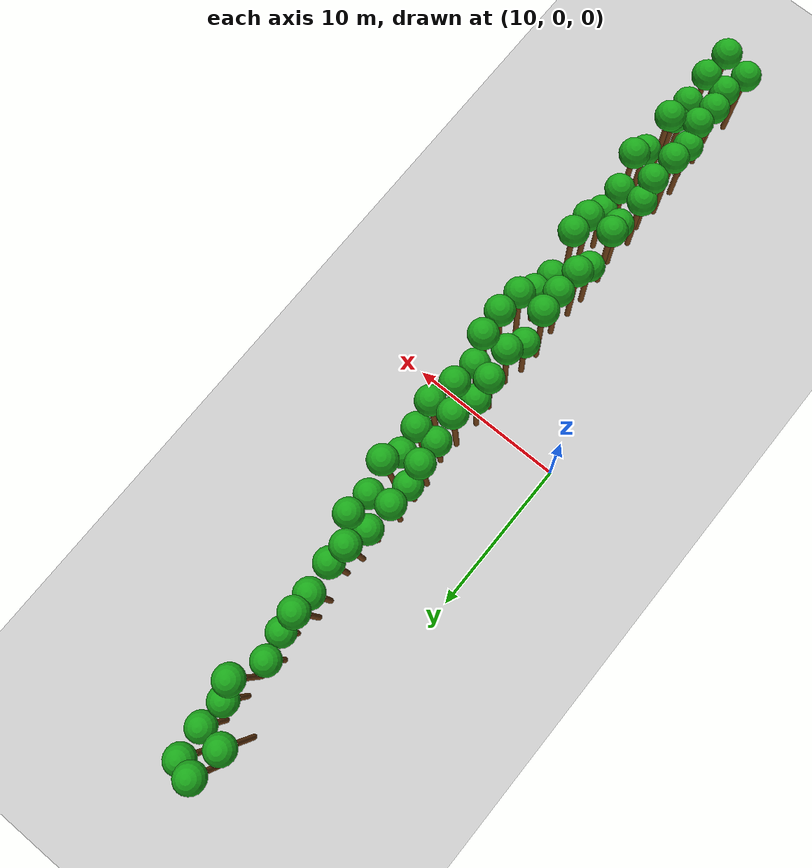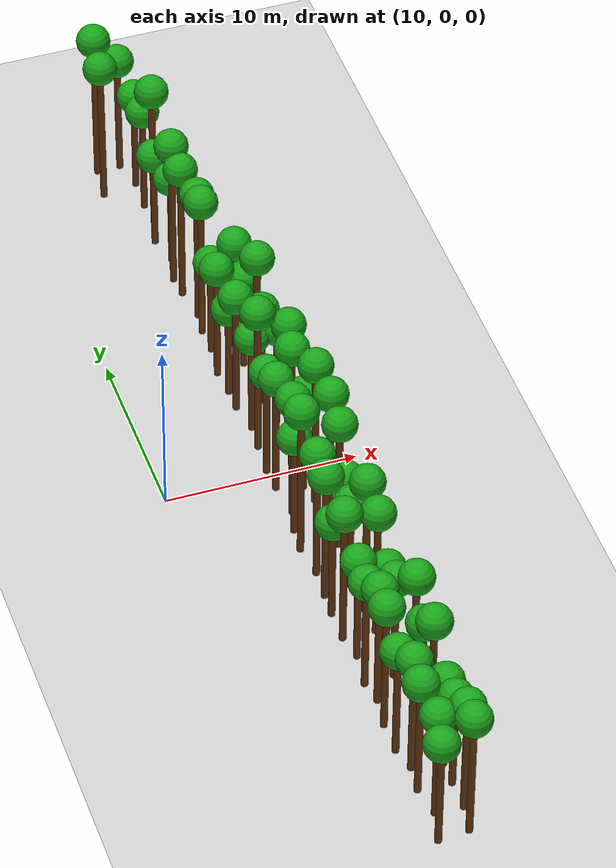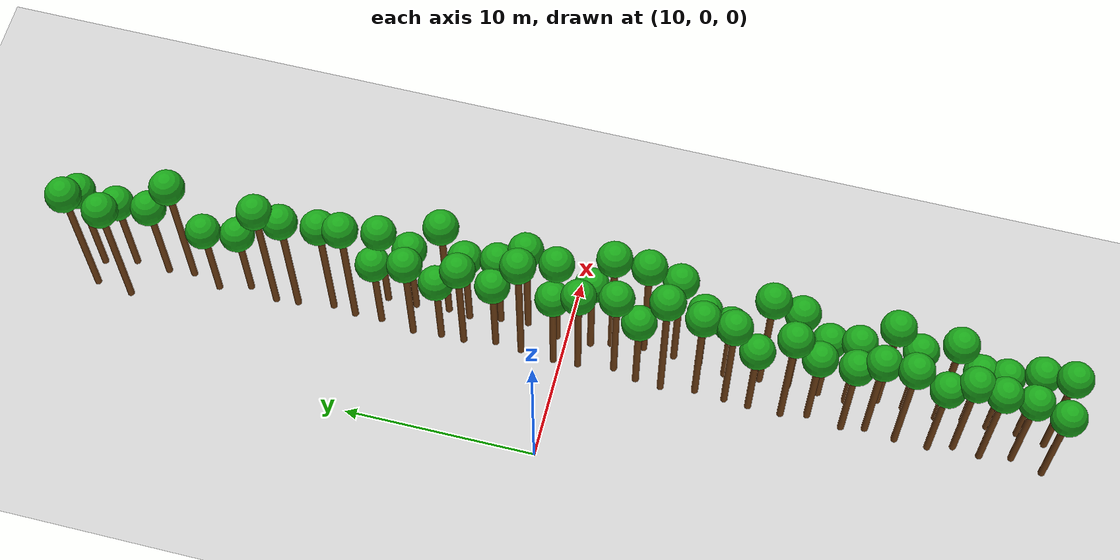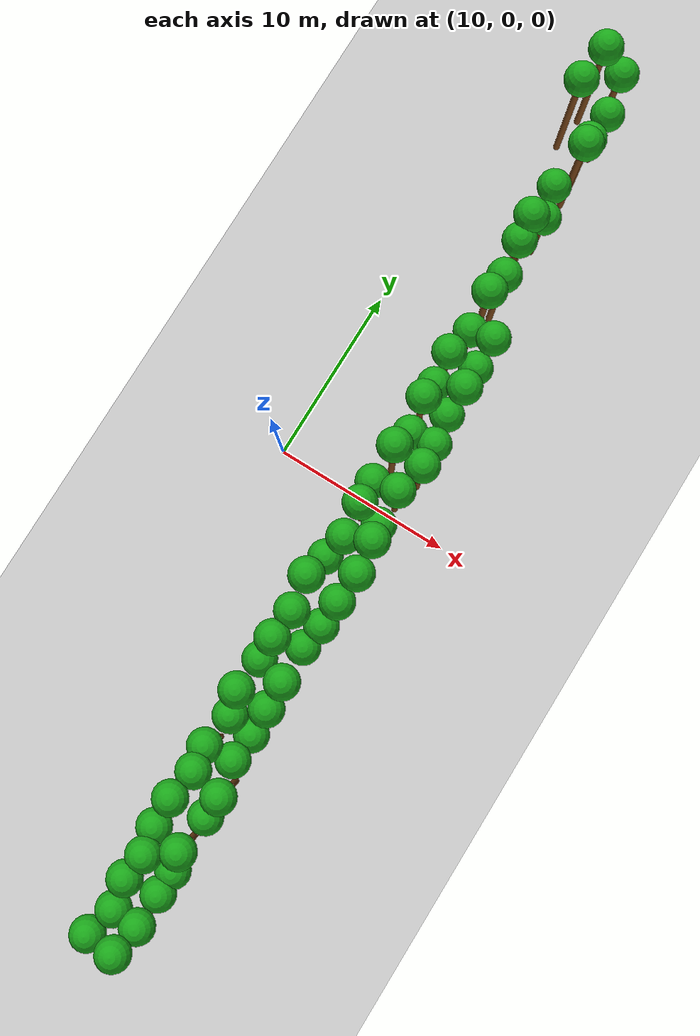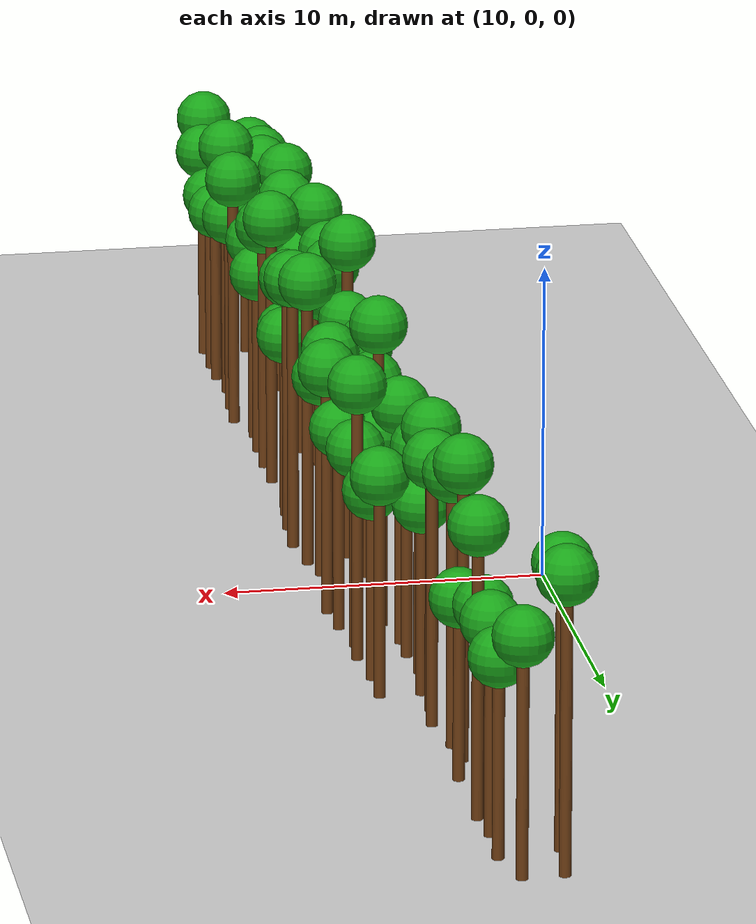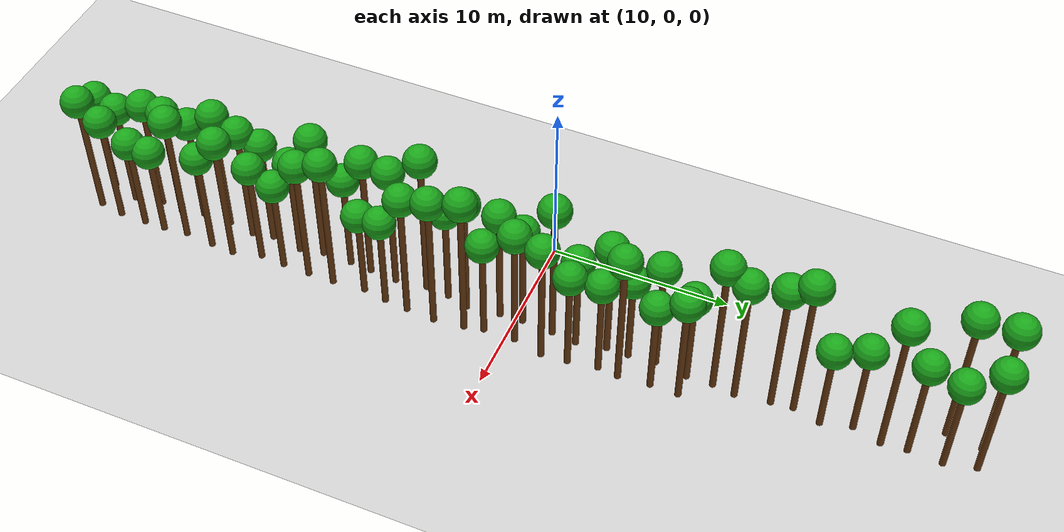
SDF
<sdf version="1.6">
 <world name="forest_world">
  <include><uri>model://sun</uri></include>
  <include><uri>model://ground_plane</uri></include>
  <model name="tree_903">
   <static>true</static>
   <link name="trunk">
    <collision name="collision">
     <pose>13.78 22.80 4.15 0 0 0</pose>
     <geometry><cylinder><radius>0.18</radius><length>8.29</length></cylinder></geometry>
    </collision>
    <visual name="trunk_visual">
     <pose>13.78 22.80 4.15 0 0 0</pose>
     <geometry><cylinder><radius>0.18</radius><length>8.29</length></cylinder></geometry>
     <material><ambient>0.35 0.20 0.05 1</ambient><diffuse>0.45 0.25 0.08 1</diffuse></material>
    </visual>
    <visual name="leaf_visual">
     <pose>13.78 22.80 8.74 0 0 0</pose>
     <geometry><sphere><radius>0.9</radius></sphere></geometry>
     <material><ambient>0.05 0.45 0.05 1</ambient><diffuse>0.10 0.65 0.10 1</diffuse></material>
    </visual>
   </link>
  </model>
  <model name="tree_904">
   <static>true</static>
   <link name="trunk">
    <collision name="collision">
     <pose>14.01 24.70 4.30 0 0 0</pose>
     <geometry><cylinder><radius>0.18</radius><length>8.61</length></cylinder></geometry>
    </collision>
    <visual name="trunk_visual">
     <pose>14.01 24.70 4.30 0 0 0</pose>
     <geometry><cylinder><radius>0.18</radius><length>8.61</length></cylinder></geometry>
     <material><ambient>0.35 0.20 0.05 1</ambient><diffuse>0.45 0.25 0.08 1</diffuse></material>
    </visual>
    <visual name="leaf_visual">
     <pose>14.01 24.70 9.06 0 0 0</pose>
     <geometry><sphere><radius>0.9</radius></sphere></geometry>
     <material><ambient>0.05 0.45 0.05 1</ambient><diffuse>0.10 0.65 0.10 1</diffuse></material>
    </visual>
   </link>
  </model>
  <model name="tree_905">
   <static>true</static>
   <link name="trunk">
    <collision name="collision">
     <pose>15.28 -24.96 3.13 0 0 0</pose>
     <geometry><cylinder><radius>0.18</radius><length>6.26</length></cylinder></geometry>
    </collision>
    <visual name="trunk_visual">
     <pose>15.28 -24.96 3.13 0 0 0</pose>
     <geometry><cylinder><radius>0.18</radius><length>6.26</length></cylinder></geometry>
     <material><ambient>0.35 0.20 0.05 1</ambient><diffuse>0.45 0.25 0.08 1</diffuse></material>
    </visual>
    <visual name="leaf_visual">
     <pose>15.28 -24.96 6.71 0 0 0</pose>
     <geometry><sphere><radius>0.9</radius></sphere></geometry>
     <material><ambient>0.05 0.45 0.05 1</ambient><diffuse>0.10 0.65 0.10 1</diffuse></material>
    </visual>
   </link>
  </model>
  <model name="tree_906">
   <static>true</static>
   <link name="trunk">
    <collision name="collision">
     <pose>15.70 -23.35 3.16 0 0 0</pose>
     <geometry><cylinder><radius>0.18</radius><length>6.32</length></cylinder></geometry>
    </collision>
    <visual name="trunk_visual">
     <pose>15.70 -23.35 3.16 0 0 0</pose>
     <geometry><cylinder><radius>0.18</radius><length>6.32</length></cylinder></geometry>
     <material><ambient>0.35 0.20 0.05 1</ambient><diffuse>0.45 0.25 0.08 1</diffuse></material>
    </visual>
    <visual name="leaf_visual">
     <pose>15.70 -23.35 6.77 0 0 0</pose>
     <geometry><sphere><radius>0.9</radius></sphere></geometry>
     <material><ambient>0.05 0.45 0.05 1</ambient><diffuse>0.10 0.65 0.10 1</diffuse></material>
    </visual>
   </link>
  </model>
  <model name="tree_907">
   <static>true</static>
   <link name="trunk">
    <collision name="collision">
     <pose>15.42 -21.76 3.46 0 0 0</pose>
     <geometry><cylinder><radius>0.18</radius><length>6.93</length></cylinder></geometry>
    </collision>
    <visual name="trunk_visual">
     <pose>15.42 -21.76 3.46 0 0 0</pose>
     <geometry><cylinder><radius>0.18</radius><length>6.93</length></cylinder></geometry>
     <material><ambient>0.35 0.20 0.05 1</ambient><diffuse>0.45 0.25 0.08 1</diffuse></material>
    </visual>
    <visual name="leaf_visual">
     <pose>15.42 -21.76 7.38 0 0 0</pose>
     <geometry><sphere><radius>0.9</radius></sphere></geometry>
     <material><ambient>0.05 0.45 0.05 1</ambient><diffuse>0.10 0.65 0.10 1</diffuse></material>
    </visual>
   </link>
  </model>
  <model name="tree_908">
   <static>true</static>
   <link name="trunk">
    <collision name="collision">
     <pose>15.59 -20.39 3.52 0 0 0</pose>
     <geometry><cylinder><radius>0.18</radius><length>7.03</length></cylinder></geometry>
    </collision>
    <visual name="trunk_visual">
     <pose>15.59 -20.39 3.52 0 0 0</pose>
     <geometry><cylinder><radius>0.18</radius><length>7.03</length></cylinder></geometry>
     <material><ambient>0.35 0.20 0.05 1</ambient><diffuse>0.45 0.25 0.08 1</diffuse></material>
    </visual>
    <visual name="leaf_visual">
     <pose>15.59 -20.39 7.48 0 0 0</pose>
     <geometry><sphere><radius>0.9</radius></sphere></geometry>
     <material><ambient>0.05 0.45 0.05 1</ambient><diffuse>0.10 0.65 0.10 1</diffuse></material>
    </visual>
   </link>
  </model>
  <model name="tree_909">
   <static>true</static>
   <link name="trunk">
    <collision name="collision">
     <pose>15.27 -19.13 3.22 0 0 0</pose>
     <geometry><cylinder><radius>0.18</radius><length>6.43</length></cylinder></geometry>
    </collision>
    <visual name="trunk_visual">
     <pose>15.27 -19.13 3.22 0 0 0</pose>
     <geometry><cylinder><radius>0.18</radius><length>6.43</length></cylinder></geometry>
     <material><ambient>0.35 0.20 0.05 1</ambient><diffuse>0.45 0.25 0.08 1</diffuse></material>
    </visual>
    <visual name="leaf_visual">
     <pose>15.27 -19.13 6.88 0 0 0</pose>
     <geometry><sphere><radius>0.9</radius></sphere></geometry>
     <material><ambient>0.05 0.45 0.05 1</ambient><diffuse>0.10 0.65 0.10 1</diffuse></material>
    </visual>
   </link>
  </model>
  <model name="tree_910">
   <static>true</static>
   <link name="trunk">
    <collision name="collision">
     <pose>15.29 -17.44 3.82 0 0 0</pose>
     <geometry><cylinder><radius>0.18</radius><length>7.64</length></cylinder></geometry>
    </collision>
    <visual name="trunk_visual">
     <pose>15.29 -17.44 3.82 0 0 0</pose>
     <geometry><cylinder><radius>0.18</radius><length>7.64</length></cylinder></geometry>
     <material><ambient>0.35 0.20 0.05 1</ambient><diffuse>0.45 0.25 0.08 1</diffuse></material>
    </visual>
    <visual name="leaf_visual">
     <pose>15.29 -17.44 8.09 0 0 0</pose>
     <geometry><sphere><radius>0.9</radius></sphere></geometry>
     <material><ambient>0.05 0.45 0.05 1</ambient><diffuse>0.10 0.65 0.10 1</diffuse></material>
    </visual>
   </link>
  </model>
  <model name="tree_911">
   <static>true</static>
   <link name="trunk">
    <collision name="collision">
     <pose>15.51 -15.88 3.61 0 0 0</pose>
     <geometry><cylinder><radius>0.18</radius><length>7.22</length></cylinder></geometry>
    </collision>
    <visual name="trunk_visual">
     <pose>15.51 -15.88 3.61 0 0 0</pose>
     <geometry><cylinder><radius>0.18</radius><length>7.22</length></cylinder></geometry>
     <material><ambient>0.35 0.20 0.05 1</ambient><diffuse>0.45 0.25 0.08 1</diffuse></material>
    </visual>
    <visual name="leaf_visual">
     <pose>15.51 -15.88 7.67 0 0 0</pose>
     <geometry><sphere><radius>0.9</radius></sphere></geometry>
     <material><ambient>0.05 0.45 0.05 1</ambient><diffuse>0.10 0.65 0.10 1</diffuse></material>
    </visual>
   </link>
  </model>
  <model name="tree_912">
   <static>true</static>
   <link name="trunk">
    <collision name="collision">
     <pose>15.29 -14.69 3.29 0 0 0</pose>
     <geometry><cylinder><radius>0.18</radius><length>6.57</length></cylinder></geometry>
    </collision>
    <visual name="trunk_visual">
     <pose>15.29 -14.69 3.29 0 0 0</pose>
     <geometry><cylinder><radius>0.18</radius><length>6.57</length></cylinder></geometry>
     <material><ambient>0.35 0.20 0.05 1</ambient><diffuse>0.45 0.25 0.08 1</diffuse></material>
    </visual>
    <visual name="leaf_visual">
     <pose>15.29 -14.69 7.02 0 0 0</pose>
     <geometry><sphere><radius>0.9</radius></sphere></geometry>
     <material><ambient>0.05 0.45 0.05 1</ambient><diffuse>0.10 0.65 0.10 1</diffuse></material>
    </visual>
   </link>
  </model>
  <model name="tree_913">
   <static>true</static>
   <link name="trunk">
    <collision name="collision">
     <pose>15.53 -12.89 3.06 0 0 0</pose>
     <geometry><cylinder><radius>0.18</radius><length>6.12</length></cylinder></geometry>
    </collision>
    <visual name="trunk_visual">
     <pose>15.53 -12.89 3.06 0 0 0</pose>
     <geometry><cylinder><radius>0.18</radius><length>6.12</length></cylinder></geometry>
     <material><ambient>0.35 0.20 0.05 1</ambient><diffuse>0.45 0.25 0.08 1</diffuse></material>
    </visual>
    <visual name="leaf_visual">
     <pose>15.53 -12.89 6.57 0 0 0</pose>
     <geometry><sphere><radius>0.9</radius></sphere></geometry>
     <material><ambient>0.05 0.45 0.05 1</ambient><diffuse>0.10 0.65 0.10 1</diffuse></material>
    </visual>
   </link>
  </model>
  <model name="tree_914">
   <static>true</static>
   <link name="trunk">
    <collision name="collision">
     <pose>15.27 -11.56 4.05 0 0 0</pose>
     <geometry><cylinder><radius>0.18</radius><length>8.09</length></cylinder></geometry>
    </collision>
    <visual name="trunk_visual">
     <pose>15.27 -11.56 4.05 0 0 0</pose>
     <geometry><cylinder><radius>0.18</radius><length>8.09</length></cylinder></geometry>
     <material><ambient>0.35 0.20 0.05 1</ambient><diffuse>0.45 0.25 0.08 1</diffuse></material>
    </visual>
    <visual name="leaf_visual">
     <pose>15.27 -11.56 8.54 0 0 0</pose>
     <geometry><sphere><radius>0.9</radius></sphere></geometry>
     <material><ambient>0.05 0.45 0.05 1</ambient><diffuse>0.10 0.65 0.10 1</diffuse></material>
    </visual>
   </link>
  </model>
  <model name="tree_915">
   <static>true</static>
   <link name="trunk">
    <collision name="collision">
     <pose>15.29 -9.87 2.95 0 0 0</pose>
     <geometry><cylinder><radius>0.18</radius><length>5.89</length></cylinder></geometry>
    </collision>
    <visual name="trunk_visual">
     <pose>15.29 -9.87 2.95 0 0 0</pose>
     <geometry><cylinder><radius>0.18</radius><length>5.89</length></cylinder></geometry>
     <material><ambient>0.35 0.20 0.05 1</ambient><diffuse>0.45 0.25 0.08 1</diffuse></material>
    </visual>
    <visual name="leaf_visual">
     <pose>15.29 -9.87 6.34 0 0 0</pose>
     <geometry><sphere><radius>0.9</radius></sphere></geometry>
     <material><ambient>0.05 0.45 0.05 1</ambient><diffuse>0.10 0.65 0.10 1</diffuse></material>
    </visual>
   </link>
  </model>
  <model name="tree_916">
   <static>true</static>
   <link name="trunk">
    <collision name="collision">
     <pose>15.37 -8.61 3.87 0 0 0</pose>
     <geometry><cylinder><radius>0.18</radius><length>7.75</length></cylinder></geometry>
    </collision>
    <visual name="trunk_visual">
     <pose>15.37 -8.61 3.87 0 0 0</pose>
     <geometry><cylinder><radius>0.18</radius><length>7.75</length></cylinder></geometry>
     <material><ambient>0.35 0.20 0.05 1</ambient><diffuse>0.45 0.25 0.08 1</diffuse></material>
    </visual>
    <visual name="leaf_visual">
     <pose>15.37 -8.61 8.20 0 0 0</pose>
     <geometry><sphere><radius>0.9</radius></sphere></geometry>
     <material><ambient>0.05 0.45 0.05 1</ambient><diffuse>0.10 0.65 0.10 1</diffuse></material>
    </visual>
   </link>
  </model>
  <model name="tree_917">
   <static>true</static>
   <link name="trunk">
    <collision name="collision">
     <pose>15.48 -7.05 3.85 0 0 0</pose>
     <geometry><cylinder><radius>0.18</radius><length>7.70</length></cylinder></geometry>
    </collision>
    <visual name="trunk_visual">
     <pose>15.48 -7.05 3.85 0 0 0</pose>
     <geometry><cylinder><radius>0.18</radius><length>7.70</length></cylinder></geometry>
     <material><ambient>0.35 0.20 0.05 1</ambient><diffuse>0.45 0.25 0.08 1</diffuse></material>
    </visual>
    <visual name="leaf_visual">
     <pose>15.48 -7.05 8.15 0 0 0</pose>
     <geometry><sphere><radius>0.9</radius></sphere></geometry>
     <material><ambient>0.05 0.45 0.05 1</ambient><diffuse>0.10 0.65 0.10 1</diffuse></material>
    </visual>
   </link>
  </model>
  <model name="tree_918">
   <static>true</static>
   <link name="trunk">
    <collision name="collision">
     <pose>15.26 -5.29 4.49 0 0 0</pose>
     <geometry><cylinder><radius>0.18</radius><length>8.99</length></cylinder></geometry>
    </collision>
    <visual name="trunk_visual">
     <pose>15.26 -5.29 4.49 0 0 0</pose>
     <geometry><cylinder><radius>0.18</radius><length>8.99</length></cylinder></geometry>
     <material><ambient>0.35 0.20 0.05 1</ambient><diffuse>0.45 0.25 0.08 1</diffuse></material>
    </visual>
    <visual name="leaf_visual">
     <pose>15.26 -5.29 9.44 0 0 0</pose>
     <geometry><sphere><radius>0.9</radius></sphere></geometry>
     <material><ambient>0.05 0.45 0.05 1</ambient><diffuse>0.10 0.65 0.10 1</diffuse></material>
    </visual>
   </link>
  </model>
  <model name="tree_919">
   <static>true</static>
   <link name="trunk">
    <collision name="collision">
     <pose>15.37 -3.96 2.98 0 0 0</pose>
     <geometry><cylinder><radius>0.18</radius><length>5.97</length></cylinder></geometry>
    </collision>
    <visual name="trunk_visual">
     <pose>15.37 -3.96 2.98 0 0 0</pose>
     <geometry><cylinder><radius>0.18</radius><length>5.97</length></cylinder></geometry>
     <material><ambient>0.35 0.20 0.05 1</ambient><diffuse>0.45 0.25 0.08 1</diffuse></material>
    </visual>
    <visual name="leaf_visual">
     <pose>15.37 -3.96 6.42 0 0 0</pose>
     <geometry><sphere><radius>0.9</radius></sphere></geometry>
     <material><ambient>0.05 0.45 0.05 1</ambient><diffuse>0.10 0.65 0.10 1</diffuse></material>
    </visual>
   </link>
  </model>
  <model name="tree_920">
   <static>true</static>
   <link name="trunk">
    <collision name="collision">
     <pose>15.70 -2.73 3.66 0 0 0</pose>
     <geometry><cylinder><radius>0.18</radius><length>7.33</length></cylinder></geometry>
    </collision>
    <visual name="trunk_visual">
     <pose>15.70 -2.73 3.66 0 0 0</pose>
     <geometry><cylinder><radius>0.18</radius><length>7.33</length></cylinder></geometry>
     <material><ambient>0.35 0.20 0.05 1</ambient><diffuse>0.45 0.25 0.08 1</diffuse></material>
    </visual>
    <visual name="leaf_visual">
     <pose>15.70 -2.73 7.78 0 0 0</pose>
     <geometry><sphere><radius>0.9</radius></sphere></geometry>
     <material><ambient>0.05 0.45 0.05 1</ambient><diffuse>0.10 0.65 0.10 1</diffuse></material>
    </visual>
   </link>
  </model>
  <model name="tree_921">
   <static>true</static>
   <link name="trunk">
    <collision name="collision">
     <pose>15.47 -0.88 3.53 0 0 0</pose>
     <geometry><cylinder><radius>0.18</radius><length>7.07</length></cylinder></geometry>
    </collision>
    <visual name="trunk_visual">
     <pose>15.47 -0.88 3.53 0 0 0</pose>
     <geometry><cylinder><radius>0.18</radius><length>7.07</length></cylinder></geometry>
     <material><ambient>0.35 0.20 0.05 1</ambient><diffuse>0.45 0.25 0.08 1</diffuse></material>
    </visual>
    <visual name="leaf_visual">
     <pose>15.47 -0.88 7.52 0 0 0</pose>
     <geometry><sphere><radius>0.9</radius></sphere></geometry>
     <material><ambient>0.05 0.45 0.05 1</ambient><diffuse>0.10 0.65 0.10 1</diffuse></material>
    </visual>
   </link>
  </model>
  <model name="tree_922">
   <static>true</static>
   <link name="trunk">
    <collision name="collision">
     <pose>15.41 0.40 3.20 0 0 0</pose>
     <geometry><cylinder><radius>0.18</radius><length>6.40</length></cylinder></geometry>
    </collision>
    <visual name="trunk_visual">
     <pose>15.41 0.40 3.20 0 0 0</pose>
     <geometry><cylinder><radius>0.18</radius><length>6.40</length></cylinder></geometry>
     <material><ambient>0.35 0.20 0.05 1</ambient><diffuse>0.45 0.25 0.08 1</diffuse></material>
    </visual>
    <visual name="leaf_visual">
     <pose>15.41 0.40 6.85 0 0 0</pose>
     <geometry><sphere><radius>0.9</radius></sphere></geometry>
     <material><ambient>0.05 0.45 0.05 1</ambient><diffuse>0.10 0.65 0.10 1</diffuse></material>
    </visual>
   </link>
  </model>
  <model name="tree_923">
   <static>true</static>
   <link name="trunk">
    <collision name="collision">
     <pose>15.54 2.15 4.37 0 0 0</pose>
     <geometry><cylinder><radius>0.18</radius><length>8.74</length></cylinder></geometry>
    </collision>
    <visual name="trunk_visual">
     <pose>15.54 2.15 4.37 0 0 0</pose>
     <geometry><cylinder><radius>0.18</radius><length>8.74</length></cylinder></geometry>
     <material><ambient>0.35 0.20 0.05 1</ambient><diffuse>0.45 0.25 0.08 1</diffuse></material>
    </visual>
    <visual name="leaf_visual">
     <pose>15.54 2.15 9.19 0 0 0</pose>
     <geometry><sphere><radius>0.9</radius></sphere></geometry>
     <material><ambient>0.05 0.45 0.05 1</ambient><diffuse>0.10 0.65 0.10 1</diffuse></material>
    </visual>
   </link>
  </model>
  <model name="tree_924">
   <static>true</static>
   <link name="trunk">
    <collision name="collision">
     <pose>15.67 3.54 2.90 0 0 0</pose>
     <geometry><cylinder><radius>0.18</radius><length>5.80</length></cylinder></geometry>
    </collision>
    <visual name="trunk_visual">
     <pose>15.67 3.54 2.90 0 0 0</pose>
     <geometry><cylinder><radius>0.18</radius><length>5.80</length></cylinder></geometry>
     <material><ambient>0.35 0.20 0.05 1</ambient><diffuse>0.45 0.25 0.08 1</diffuse></material>
    </visual>
    <visual name="leaf_visual">
     <pose>15.67 3.54 6.25 0 0 0</pose>
     <geometry><sphere><radius>0.9</radius></sphere></geometry>
     <material><ambient>0.05 0.45 0.05 1</ambient><diffuse>0.10 0.65 0.10 1</diffuse></material>
    </visual>
   </link>
  </model>
  <model name="tree_925">
   <static>true</static>
   <link name="trunk">
    <collision name="collision">
     <pose>15.39 5.18 3.59 0 0 0</pose>
     <geometry><cylinder><radius>0.18</radius><length>7.17</length></cylinder></geometry>
    </collision>
    <visual name="trunk_visual">
     <pose>15.39 5.18 3.59 0 0 0</pose>
     <geometry><cylinder><radius>0.18</radius><length>7.17</length></cylinder></geometry>
     <material><ambient>0.35 0.20 0.05 1</ambient><diffuse>0.45 0.25 0.08 1</diffuse></material>
    </visual>
    <visual name="leaf_visual">
     <pose>15.39 5.18 7.62 0 0 0</pose>
     <geometry><sphere><radius>0.9</radius></sphere></geometry>
     <material><ambient>0.05 0.45 0.05 1</ambient><diffuse>0.10 0.65 0.10 1</diffuse></material>
    </visual>
   </link>
  </model>
  <model name="tree_926">
   <static>true</static>
   <link name="trunk">
    <collision name="collision">
     <pose>15.39 6.38 2.66 0 0 0</pose>
     <geometry><cylinder><radius>0.18</radius><length>5.31</length></cylinder></geometry>
    </collision>
    <visual name="trunk_visual">
     <pose>15.39 6.38 2.66 0 0 0</pose>
     <geometry><cylinder><radius>0.18</radius><length>5.31</length></cylinder></geometry>
     <material><ambient>0.35 0.20 0.05 1</ambient><diffuse>0.45 0.25 0.08 1</diffuse></material>
    </visual>
    <visual name="leaf_visual">
     <pose>15.39 6.38 5.76 0 0 0</pose>
     <geometry><sphere><radius>0.9</radius></sphere></geometry>
     <material><ambient>0.05 0.45 0.05 1</ambient><diffuse>0.10 0.65 0.10 1</diffuse></material>
    </visual>
   </link>
  </model>
  <model name="tree_927">
   <static>true</static>
   <link name="trunk">
    <collision name="collision">
     <pose>15.26 7.86 3.38 0 0 0</pose>
     <geometry><cylinder><radius>0.18</radius><length>6.76</length></cylinder></geometry>
    </collision>
    <visual name="trunk_visual">
     <pose>15.26 7.86 3.38 0 0 0</pose>
     <geometry><cylinder><radius>0.18</radius><length>6.76</length></cylinder></geometry>
     <material><ambient>0.35 0.20 0.05 1</ambient><diffuse>0.45 0.25 0.08 1</diffuse></material>
    </visual>
    <visual name="leaf_visual">
     <pose>15.26 7.86 7.21 0 0 0</pose>
     <geometry><sphere><radius>0.9</radius></sphere></geometry>
     <material><ambient>0.05 0.45 0.05 1</ambient><diffuse>0.10 0.65 0.10 1</diffuse></material>
    </visual>
   </link>
  </model>
  <model name="tree_928">
   <static>true</static>
   <link name="trunk">
    <collision name="collision">
     <pose>15.51 9.64 2.79 0 0 0</pose>
     <geometry><cylinder><radius>0.18</radius><length>5.59</length></cylinder></geometry>
    </collision>
    <visual name="trunk_visual">
     <pose>15.51 9.64 2.79 0 0 0</pose>
     <geometry><cylinder><radius>0.18</radius><length>5.59</length></cylinder></geometry>
     <material><ambient>0.35 0.20 0.05 1</ambient><diffuse>0.45 0.25 0.08 1</diffuse></material>
    </visual>
    <visual name="leaf_visual">
     <pose>15.51 9.64 6.04 0 0 0</pose>
     <geometry><sphere><radius>0.9</radius></sphere></geometry>
     <material><ambient>0.05 0.45 0.05 1</ambient><diffuse>0.10 0.65 0.10 1</diffuse></material>
    </visual>
   </link>
  </model>
  <model name="tree_929">
   <static>true</static>
   <link name="trunk">
    <collision name="collision">
     <pose>15.48 11.06 4.23 0 0 0</pose>
     <geometry><cylinder><radius>0.18</radius><length>8.46</length></cylinder></geometry>
    </collision>
    <visual name="trunk_visual">
     <pose>15.48 11.06 4.23 0 0 0</pose>
     <geometry><cylinder><radius>0.18</radius><length>8.46</length></cylinder></geometry>
     <material><ambient>0.35 0.20 0.05 1</ambient><diffuse>0.45 0.25 0.08 1</diffuse></material>
    </visual>
    <visual name="leaf_visual">
     <pose>15.48 11.06 8.91 0 0 0</pose>
     <geometry><sphere><radius>0.9</radius></sphere></geometry>
     <material><ambient>0.05 0.45 0.05 1</ambient><diffuse>0.10 0.65 0.10 1</diffuse></material>
    </visual>
   </link>
  </model>
  <model name="tree_930">
   <static>true</static>
   <link name="trunk">
    <collision name="collision">
     <pose>15.66 12.28 3.95 0 0 0</pose>
     <geometry><cylinder><radius>0.18</radius><length>7.90</length></cylinder></geometry>
    </collision>
    <visual name="trunk_visual">
     <pose>15.66 12.28 3.95 0 0 0</pose>
     <geometry><cylinder><radius>0.18</radius><length>7.90</length></cylinder></geometry>
     <material><ambient>0.35 0.20 0.05 1</ambient><diffuse>0.45 0.25 0.08 1</diffuse></material>
    </visual>
    <visual name="leaf_visual">
     <pose>15.66 12.28 8.35 0 0 0</pose>
     <geometry><sphere><radius>0.9</radius></sphere></geometry>
     <material><ambient>0.05 0.45 0.05 1</ambient><diffuse>0.10 0.65 0.10 1</diffuse></material>
    </visual>
   </link>
  </model>
  <model name="tree_931">
   <static>true</static>
   <link name="trunk">
    <collision name="collision">
     <pose>15.39 14.14 4.05 0 0 0</pose>
     <geometry><cylinder><radius>0.18</radius><length>8.10</length></cylinder></geometry>
    </collision>
    <visual name="trunk_visual">
     <pose>15.39 14.14 4.05 0 0 0</pose>
     <geometry><cylinder><radius>0.18</radius><length>8.10</length></cylinder></geometry>
     <material><ambient>0.35 0.20 0.05 1</ambient><diffuse>0.45 0.25 0.08 1</diffuse></material>
    </visual>
    <visual name="leaf_visual">
     <pose>15.39 14.14 8.55 0 0 0</pose>
     <geometry><sphere><radius>0.9</radius></sphere></geometry>
     <material><ambient>0.05 0.45 0.05 1</ambient><diffuse>0.10 0.65 0.10 1</diffuse></material>
    </visual>
   </link>
  </model>
  <model name="tree_932">
   <static>true</static>
   <link name="trunk">
    <collision name="collision">
     <pose>15.28 15.31 4.38 0 0 0</pose>
     <geometry><cylinder><radius>0.18</radius><length>8.76</length></cylinder></geometry>
    </collision>
    <visual name="trunk_visual">
     <pose>15.28 15.31 4.38 0 0 0</pose>
     <geometry><cylinder><radius>0.18</radius><length>8.76</length></cylinder></geometry>
     <material><ambient>0.35 0.20 0.05 1</ambient><diffuse>0.45 0.25 0.08 1</diffuse></material>
    </visual>
    <visual name="leaf_visual">
     <pose>15.28 15.31 9.21 0 0 0</pose>
     <geometry><sphere><radius>0.9</radius></sphere></geometry>
     <material><ambient>0.05 0.45 0.05 1</ambient><diffuse>0.10 0.65 0.10 1</diffuse></material>
    </visual>
   </link>
  </model>
  <model name="tree_933">
   <static>true</static>
   <link name="trunk">
    <collision name="collision">
     <pose>15.66 16.80 2.60 0 0 0</pose>
     <geometry><cylinder><radius>0.18</radius><length>5.20</length></cylinder></geometry>
    </collision>
    <visual name="trunk_visual">
     <pose>15.66 16.80 2.60 0 0 0</pose>
     <geometry><cylinder><radius>0.18</radius><length>5.20</length></cylinder></geometry>
     <material><ambient>0.35 0.20 0.05 1</ambient><diffuse>0.45 0.25 0.08 1</diffuse></material>
    </visual>
    <visual name="leaf_visual">
     <pose>15.66 16.80 5.65 0 0 0</pose>
     <geometry><sphere><radius>0.9</radius></sphere></geometry>
     <material><ambient>0.05 0.45 0.05 1</ambient><diffuse>0.10 0.65 0.10 1</diffuse></material>
    </visual>
   </link>
  </model>
  <model name="tree_934">
   <static>true</static>
   <link name="trunk">
    <collision name="collision">
     <pose>15.25 18.42 2.76 0 0 0</pose>
     <geometry><cylinder><radius>0.18</radius><length>5.52</length></cylinder></geometry>
    </collision>
    <visual name="trunk_visual">
     <pose>15.25 18.42 2.76 0 0 0</pose>
     <geometry><cylinder><radius>0.18</radius><length>5.52</length></cylinder></geometry>
     <material><ambient>0.35 0.20 0.05 1</ambient><diffuse>0.45 0.25 0.08 1</diffuse></material>
    </visual>
    <visual name="leaf_visual">
     <pose>15.25 18.42 5.97 0 0 0</pose>
     <geometry><sphere><radius>0.9</radius></sphere></geometry>
     <material><ambient>0.05 0.45 0.05 1</ambient><diffuse>0.10 0.65 0.10 1</diffuse></material>
    </visual>
   </link>
  </model>
  <model name="tree_935">
   <static>true</static>
   <link name="trunk">
    <collision name="collision">
     <pose>15.68 19.95 4.25 0 0 0</pose>
     <geometry><cylinder><radius>0.18</radius><length>8.51</length></cylinder></geometry>
    </collision>
    <visual name="trunk_visual">
     <pose>15.68 19.95 4.25 0 0 0</pose>
     <geometry><cylinder><radius>0.18</radius><length>8.51</length></cylinder></geometry>
     <material><ambient>0.35 0.20 0.05 1</ambient><diffuse>0.45 0.25 0.08 1</diffuse></material>
    </visual>
    <visual name="leaf_visual">
     <pose>15.68 19.95 8.96 0 0 0</pose>
     <geometry><sphere><radius>0.9</radius></sphere></geometry>
     <material><ambient>0.05 0.45 0.05 1</ambient><diffuse>0.10 0.65 0.10 1</diffuse></material>
    </visual>
   </link>
  </model>
  <model name="tree_936">
   <static>true</static>
   <link name="trunk">
    <collision name="collision">
     <pose>15.56 21.30 3.05 0 0 0</pose>
     <geometry><cylinder><radius>0.18</radius><length>6.11</length></cylinder></geometry>
    </collision>
    <visual name="trunk_visual">
     <pose>15.56 21.30 3.05 0 0 0</pose>
     <geometry><cylinder><radius>0.18</radius><length>6.11</length></cylinder></geometry>
     <material><ambient>0.35 0.20 0.05 1</ambient><diffuse>0.45 0.25 0.08 1</diffuse></material>
    </visual>
    <visual name="leaf_visual">
     <pose>15.56 21.30 6.56 0 0 0</pose>
     <geometry><sphere><radius>0.9</radius></sphere></geometry>
     <material><ambient>0.05 0.45 0.05 1</ambient><diffuse>0.10 0.65 0.10 1</diffuse></material>
    </visual>
   </link>
  </model>
  <model name="tree_937">
   <static>true</static>
   <link name="trunk">
    <collision name="collision">
     <pose>15.65 23.10 2.84 0 0 0</pose>
     <geometry><cylinder><radius>0.18</radius><length>5.68</length></cylinder></geometry>
    </collision>
    <visual name="trunk_visual">
     <pose>15.65 23.10 2.84 0 0 0</pose>
     <geometry><cylinder><radius>0.18</radius><length>5.68</length></cylinder></geometry>
     <material><ambient>0.35 0.20 0.05 1</ambient><diffuse>0.45 0.25 0.08 1</diffuse></material>
    </visual>
    <visual name="leaf_visual">
     <pose>15.65 23.10 6.13 0 0 0</pose>
     <geometry><sphere><radius>0.9</radius></sphere></geometry>
     <material><ambient>0.05 0.45 0.05 1</ambient><diffuse>0.10 0.65 0.10 1</diffuse></material>
    </visual>
   </link>
  </model>
  <model name="tree_938">
   <static>true</static>
   <link name="trunk">
    <collision name="collision">
     <pose>15.26 24.75 3.44 0 0 0</pose>
     <geometry><cylinder><radius>0.18</radius><length>6.88</length></cylinder></geometry>
    </collision>
    <visual name="trunk_visual">
     <pose>15.26 24.75 3.44 0 0 0</pose>
     <geometry><cylinder><radius>0.18</radius><length>6.88</length></cylinder></geometry>
     <material><ambient>0.35 0.20 0.05 1</ambient><diffuse>0.45 0.25 0.08 1</diffuse></material>
    </visual>
    <visual name="leaf_visual">
     <pose>15.26 24.75 7.33 0 0 0</pose>
     <geometry><sphere><radius>0.9</radius></sphere></geometry>
     <material><ambient>0.05 0.45 0.05 1</ambient><diffuse>0.10 0.65 0.10 1</diffuse></material>
    </visual>
   </link>
  </model>
  <model name="tree_939">
   <static>true</static>
   <link name="trunk">
    <collision name="collision">
     <pose>16.85 -24.84 3.64 0 0 0</pose>
     <geometry><cylinder><radius>0.18</radius><length>7.27</length></cylinder></geometry>
    </collision>
    <visual name="trunk_visual">
     <pose>16.85 -24.84 3.64 0 0 0</pose>
     <geometry><cylinder><radius>0.18</radius><length>7.27</length></cylinder></geometry>
     <material><ambient>0.35 0.20 0.05 1</ambient><diffuse>0.45 0.25 0.08 1</diffuse></material>
    </visual>
    <visual name="leaf_visual">
     <pose>16.85 -24.84 7.72 0 0 0</pose>
     <geometry><sphere><radius>0.9</radius></sphere></geometry>
     <material><ambient>0.05 0.45 0.05 1</ambient><diffuse>0.10 0.65 0.10 1</diffuse></material>
    </visual>
   </link>
  </model>
  <model name="tree_940">
   <static>true</static>
   <link name="trunk">
    <collision name="collision">
     <pose>17.10 -23.41 3.28 0 0 0</pose>
     <geometry><cylinder><radius>0.18</radius><length>6.56</length></cylinder></geometry>
    </collision>
    <visual name="trunk_visual">
     <pose>17.10 -23.41 3.28 0 0 0</pose>
     <geometry><cylinder><radius>0.18</radius><length>6.56</length></cylinder></geometry>
     <material><ambient>0.35 0.20 0.05 1</ambient><diffuse>0.45 0.25 0.08 1</diffuse></material>
    </visual>
    <visual name="leaf_visual">
     <pose>17.10 -23.41 7.01 0 0 0</pose>
     <geometry><sphere><radius>0.9</radius></sphere></geometry>
     <material><ambient>0.05 0.45 0.05 1</ambient><diffuse>0.10 0.65 0.10 1</diffuse></material>
    </visual>
   </link>
  </model>
  <model name="tree_941">
   <static>true</static>
   <link name="trunk">
    <collision name="collision">
     <pose>17.10 -21.86 2.76 0 0 0</pose>
     <geometry><cylinder><radius>0.18</radius><length>5.53</length></cylinder></geometry>
    </collision>
    <visual name="trunk_visual">
     <pose>17.10 -21.86 2.76 0 0 0</pose>
     <geometry><cylinder><radius>0.18</radius><length>5.53</length></cylinder></geometry>
     <material><ambient>0.35 0.20 0.05 1</ambient><diffuse>0.45 0.25 0.08 1</diffuse></material>
    </visual>
    <visual name="leaf_visual">
     <pose>17.10 -21.86 5.98 0 0 0</pose>
     <geometry><sphere><radius>0.9</radius></sphere></geometry>
     <material><ambient>0.05 0.45 0.05 1</ambient><diffuse>0.10 0.65 0.10 1</diffuse></material>
    </visual>
   </link>
  </model>
  <model name="tree_942">
   <static>true</static>
   <link name="trunk">
    <collision name="collision">
     <pose>17.11 -20.62 2.69 0 0 0</pose>
     <geometry><cylinder><radius>0.18</radius><length>5.37</length></cylinder></geometry>
    </collision>
    <visual name="trunk_visual">
     <pose>17.11 -20.62 2.69 0 0 0</pose>
     <geometry><cylinder><radius>0.18</radius><length>5.37</length></cylinder></geometry>
     <material><ambient>0.35 0.20 0.05 1</ambient><diffuse>0.45 0.25 0.08 1</diffuse></material>
    </visual>
    <visual name="leaf_visual">
     <pose>17.11 -20.62 5.82 0 0 0</pose>
     <geometry><sphere><radius>0.9</radius></sphere></geometry>
     <material><ambient>0.05 0.45 0.05 1</ambient><diffuse>0.10 0.65 0.10 1</diffuse></material>
    </visual>
   </link>
  </model>
  <model name="tree_943">
   <static>true</static>
   <link name="trunk">
    <collision name="collision">
     <pose>16.96 -19.24 3.99 0 0 0</pose>
     <geometry><cylinder><radius>0.18</radius><length>7.98</length></cylinder></geometry>
    </collision>
    <visual name="trunk_visual">
     <pose>16.96 -19.24 3.99 0 0 0</pose>
     <geometry><cylinder><radius>0.18</radius><length>7.98</length></cylinder></geometry>
     <material><ambient>0.35 0.20 0.05 1</ambient><diffuse>0.45 0.25 0.08 1</diffuse></material>
    </visual>
    <visual name="leaf_visual">
     <pose>16.96 -19.24 8.43 0 0 0</pose>
     <geometry><sphere><radius>0.9</radius></sphere></geometry>
     <material><ambient>0.05 0.45 0.05 1</ambient><diffuse>0.10 0.65 0.10 1</diffuse></material>
    </visual>
   </link>
  </model>
  <model name="tree_944">
   <static>true</static>
   <link name="trunk">
    <collision name="collision">
     <pose>17.11 -17.55 3.06 0 0 0</pose>
     <geometry><cylinder><radius>0.18</radius><length>6.12</length></cylinder></geometry>
    </collision>
    <visual name="trunk_visual">
     <pose>17.11 -17.55 3.06 0 0 0</pose>
     <geometry><cylinder><radius>0.18</radius><length>6.12</length></cylinder></geometry>
     <material><ambient>0.35 0.20 0.05 1</ambient><diffuse>0.45 0.25 0.08 1</diffuse></material>
    </visual>
    <visual name="leaf_visual">
     <pose>17.11 -17.55 6.57 0 0 0</pose>
     <geometry><sphere><radius>0.9</radius></sphere></geometry>
     <material><ambient>0.05 0.45 0.05 1</ambient><diffuse>0.10 0.65 0.10 1</diffuse></material>
    </visual>
   </link>
  </model>
  <model name="tree_945">
   <static>true</static>
   <link name="trunk">
    <collision name="collision">
     <pose>17.20 -16.20 3.90 0 0 0</pose>
     <geometry><cylinder><radius>0.18</radius><length>7.81</length></cylinder></geometry>
    </collision>
    <visual name="trunk_visual">
     <pose>17.20 -16.20 3.90 0 0 0</pose>
     <geometry><cylinder><radius>0.18</radius><length>7.81</length></cylinder></geometry>
     <material><ambient>0.35 0.20 0.05 1</ambient><diffuse>0.45 0.25 0.08 1</diffuse></material>
    </visual>
    <visual name="leaf_visual">
     <pose>17.20 -16.20 8.26 0 0 0</pose>
     <geometry><sphere><radius>0.9</radius></sphere></geometry>
     <material><ambient>0.05 0.45 0.05 1</ambient><diffuse>0.10 0.65 0.10 1</diffuse></material>
    </visual>
   </link>
  </model>
  <model name="tree_946">
   <static>true</static>
   <link name="trunk">
    <collision name="collision">
     <pose>16.79 -14.60 3.12 0 0 0</pose>
     <geometry><cylinder><radius>0.18</radius><length>6.24</length></cylinder></geometry>
    </collision>
    <visual name="trunk_visual">
     <pose>16.79 -14.60 3.12 0 0 0</pose>
     <geometry><cylinder><radius>0.18</radius><length>6.24</length></cylinder></geometry>
     <material><ambient>0.35 0.20 0.05 1</ambient><diffuse>0.45 0.25 0.08 1</diffuse></material>
    </visual>
    <visual name="leaf_visual">
     <pose>16.79 -14.60 6.69 0 0 0</pose>
     <geometry><sphere><radius>0.9</radius></sphere></geometry>
     <material><ambient>0.05 0.45 0.05 1</ambient><diffuse>0.10 0.65 0.10 1</diffuse></material>
    </visual>
   </link>
  </model>
  <model name="tree_947">
   <static>true</static>
   <link name="trunk">
    <collision name="collision">
     <pose>16.88 -13.18 2.79 0 0 0</pose>
     <geometry><cylinder><radius>0.18</radius><length>5.58</length></cylinder></geometry>
    </collision>
    <visual name="trunk_visual">
     <pose>16.88 -13.18 2.79 0 0 0</pose>
     <geometry><cylinder><radius>0.18</radius><length>5.58</length></cylinder></geometry>
     <material><ambient>0.35 0.20 0.05 1</ambient><diffuse>0.45 0.25 0.08 1</diffuse></material>
    </visual>
    <visual name="leaf_visual">
     <pose>16.88 -13.18 6.03 0 0 0</pose>
     <geometry><sphere><radius>0.9</radius></sphere></geometry>
     <material><ambient>0.05 0.45 0.05 1</ambient><diffuse>0.10 0.65 0.10 1</diffuse></material>
    </visual>
   </link>
  </model>
  <model name="tree_948">
   <static>true</static>
   <link name="trunk">
    <collision name="collision">
     <pose>16.93 -11.61 3.84 0 0 0</pose>
     <geometry><cylinder><radius>0.18</radius><length>7.67</length></cylinder></geometry>
    </collision>
    <visual name="trunk_visual">
     <pose>16.93 -11.61 3.84 0 0 0</pose>
     <geometry><cylinder><radius>0.18</radius><length>7.67</length></cylinder></geometry>
     <material><ambient>0.35 0.20 0.05 1</ambient><diffuse>0.45 0.25 0.08 1</diffuse></material>
    </visual>
    <visual name="leaf_visual">
     <pose>16.93 -11.61 8.12 0 0 0</pose>
     <geometry><sphere><radius>0.9</radius></sphere></geometry>
     <material><ambient>0.05 0.45 0.05 1</ambient><diffuse>0.10 0.65 0.10 1</diffuse></material>
    </visual>
   </link>
  </model>
  <model name="tree_949">
   <static>true</static>
   <link name="trunk">
    <collision name="collision">
     <pose>16.91 -10.13 4.17 0 0 0</pose>
     <geometry><cylinder><radius>0.18</radius><length>8.35</length></cylinder></geometry>
    </collision>
    <visual name="trunk_visual">
     <pose>16.91 -10.13 4.17 0 0 0</pose>
     <geometry><cylinder><radius>0.18</radius><length>8.35</length></cylinder></geometry>
     <material><ambient>0.35 0.20 0.05 1</ambient><diffuse>0.45 0.25 0.08 1</diffuse></material>
    </visual>
    <visual name="leaf_visual">
     <pose>16.91 -10.13 8.80 0 0 0</pose>
     <geometry><sphere><radius>0.9</radius></sphere></geometry>
     <material><ambient>0.05 0.45 0.05 1</ambient><diffuse>0.10 0.65 0.10 1</diffuse></material>
    </visual>
   </link>
  </model>
  <model name="tree_950">
   <static>true</static>
   <link name="trunk">
    <collision name="collision">
     <pose>16.76 -8.30 2.62 0 0 0</pose>
     <geometry><cylinder><radius>0.18</radius><length>5.25</length></cylinder></geometry>
    </collision>
    <visual name="trunk_visual">
     <pose>16.76 -8.30 2.62 0 0 0</pose>
     <geometry><cylinder><radius>0.18</radius><length>5.25</length></cylinder></geometry>
     <material><ambient>0.35 0.20 0.05 1</ambient><diffuse>0.45 0.25 0.08 1</diffuse></material>
    </visual>
    <visual name="leaf_visual">
     <pose>16.76 -8.30 5.70 0 0 0</pose>
     <geometry><sphere><radius>0.9</radius></sphere></geometry>
     <material><ambient>0.05 0.45 0.05 1</ambient><diffuse>0.10 0.65 0.10 1</diffuse></material>
    </visual>
   </link>
  </model>
  <model name="tree_951">
   <static>true</static>
   <link name="trunk">
    <collision name="collision">
     <pose>16.98 -6.93 2.76 0 0 0</pose>
     <geometry><cylinder><radius>0.18</radius><length>5.53</length></cylinder></geometry>
    </collision>
    <visual name="trunk_visual">
     <pose>16.98 -6.93 2.76 0 0 0</pose>
     <geometry><cylinder><radius>0.18</radius><length>5.53</length></cylinder></geometry>
     <material><ambient>0.35 0.20 0.05 1</ambient><diffuse>0.45 0.25 0.08 1</diffuse></material>
    </visual>
    <visual name="leaf_visual">
     <pose>16.98 -6.93 5.98 0 0 0</pose>
     <geometry><sphere><radius>0.9</radius></sphere></geometry>
     <material><ambient>0.05 0.45 0.05 1</ambient><diffuse>0.10 0.65 0.10 1</diffuse></material>
    </visual>
   </link>
  </model>
  <model name="tree_952">
   <static>true</static>
   <link name="trunk">
    <collision name="collision">
     <pose>17.11 -5.58 3.93 0 0 0</pose>
     <geometry><cylinder><radius>0.18</radius><length>7.85</length></cylinder></geometry>
    </collision>
    <visual name="trunk_visual">
     <pose>17.11 -5.58 3.93 0 0 0</pose>
     <geometry><cylinder><radius>0.18</radius><length>7.85</length></cylinder></geometry>
     <material><ambient>0.35 0.20 0.05 1</ambient><diffuse>0.45 0.25 0.08 1</diffuse></material>
    </visual>
    <visual name="leaf_visual">
     <pose>17.11 -5.58 8.30 0 0 0</pose>
     <geometry><sphere><radius>0.9</radius></sphere></geometry>
     <material><ambient>0.05 0.45 0.05 1</ambient><diffuse>0.10 0.65 0.10 1</diffuse></material>
    </visual>
   </link>
  </model>
  <model name="tree_953">
   <static>true</static>
   <link name="trunk">
    <collision name="collision">
     <pose>17.21 -3.97 4.17 0 0 0</pose>
     <geometry><cylinder><radius>0.18</radius><length>8.35</length></cylinder></geometry>
    </collision>
    <visual name="trunk_visual">
     <pose>17.21 -3.97 4.17 0 0 0</pose>
     <geometry><cylinder><radius>0.18</radius><length>8.35</length></cylinder></geometry>
     <material><ambient>0.35 0.20 0.05 1</ambient><diffuse>0.45 0.25 0.08 1</diffuse></material>
    </visual>
    <visual name="leaf_visual">
     <pose>17.21 -3.97 8.80 0 0 0</pose>
     <geometry><sphere><radius>0.9</radius></sphere></geometry>
     <material><ambient>0.05 0.45 0.05 1</ambient><diffuse>0.10 0.65 0.10 1</diffuse></material>
    </visual>
   </link>
  </model>
  <model name="tree_954">
   <static>true</static>
   <link name="trunk">
    <collision name="collision">
     <pose>17.02 -2.28 4.39 0 0 0</pose>
     <geometry><cylinder><radius>0.18</radius><length>8.78</length></cylinder></geometry>
    </collision>
    <visual name="trunk_visual">
     <pose>17.02 -2.28 4.39 0 0 0</pose>
     <geometry><cylinder><radius>0.18</radius><length>8.78</length></cylinder></geometry>
     <material><ambient>0.35 0.20 0.05 1</ambient><diffuse>0.45 0.25 0.08 1</diffuse></material>
    </visual>
    <visual name="leaf_visual">
     <pose>17.02 -2.28 9.23 0 0 0</pose>
     <geometry><sphere><radius>0.9</radius></sphere></geometry>
     <material><ambient>0.05 0.45 0.05 1</ambient><diffuse>0.10 0.65 0.10 1</diffuse></material>
    </visual>
   </link>
  </model>
  <model name="tree_955">
   <static>true</static>
   <link name="trunk">
    <collision name="collision">
     <pose>16.78 -1.24 3.01 0 0 0</pose>
     <geometry><cylinder><radius>0.18</radius><length>6.03</length></cylinder></geometry>
    </collision>
    <visual name="trunk_visual">
     <pose>16.78 -1.24 3.01 0 0 0</pose>
     <geometry><cylinder><radius>0.18</radius><length>6.03</length></cylinder></geometry>
     <material><ambient>0.35 0.20 0.05 1</ambient><diffuse>0.45 0.25 0.08 1</diffuse></material>
    </visual>
    <visual name="leaf_visual">
     <pose>16.78 -1.24 6.48 0 0 0</pose>
     <geometry><sphere><radius>0.9</radius></sphere></geometry>
     <material><ambient>0.05 0.45 0.05 1</ambient><diffuse>0.10 0.65 0.10 1</diffuse></material>
    </visual>
   </link>
  </model>
  <model name="tree_956">
   <static>true</static>
   <link name="trunk">
    <collision name="collision">
     <pose>16.76 0.53 3.73 0 0 0</pose>
     <geometry><cylinder><radius>0.18</radius><length>7.45</length></cylinder></geometry>
    </collision>
    <visual name="trunk_visual">
     <pose>16.76 0.53 3.73 0 0 0</pose>
     <geometry><cylinder><radius>0.18</radius><length>7.45</length></cylinder></geometry>
     <material><ambient>0.35 0.20 0.05 1</ambient><diffuse>0.45 0.25 0.08 1</diffuse></material>
    </visual>
    <visual name="leaf_visual">
     <pose>16.76 0.53 7.90 0 0 0</pose>
     <geometry><sphere><radius>0.9</radius></sphere></geometry>
     <material><ambient>0.05 0.45 0.05 1</ambient><diffuse>0.10 0.65 0.10 1</diffuse></material>
    </visual>
   </link>
  </model>
  <model name="tree_957">
   <static>true</static>
   <link name="trunk">
    <collision name="collision">
     <pose>17.14 2.18 3.73 0 0 0</pose>
     <geometry><cylinder><radius>0.18</radius><length>7.46</length></cylinder></geometry>
    </collision>
    <visual name="trunk_visual">
     <pose>17.14 2.18 3.73 0 0 0</pose>
     <geometry><cylinder><radius>0.18</radius><length>7.46</length></cylinder></geometry>
     <material><ambient>0.35 0.20 0.05 1</ambient><diffuse>0.45 0.25 0.08 1</diffuse></material>
    </visual>
    <visual name="leaf_visual">
     <pose>17.14 2.18 7.91 0 0 0</pose>
     <geometry><sphere><radius>0.9</radius></sphere></geometry>
     <material><ambient>0.05 0.45 0.05 1</ambient><diffuse>0.10 0.65 0.10 1</diffuse></material>
    </visual>
   </link>
  </model>
  <model name="tree_958">
   <static>true</static>
   <link name="trunk">
    <collision name="collision">
     <pose>17.02 3.62 3.00 0 0 0</pose>
     <geometry><cylinder><radius>0.18</radius><length>6.00</length></cylinder></geometry>
    </collision>
    <visual name="trunk_visual">
     <pose>17.02 3.62 3.00 0 0 0</pose>
     <geometry><cylinder><radius>0.18</radius><length>6.00</length></cylinder></geometry>
     <material><ambient>0.35 0.20 0.05 1</ambient><diffuse>0.45 0.25 0.08 1</diffuse></material>
    </visual>
    <visual name="leaf_visual">
     <pose>17.02 3.62 6.45 0 0 0</pose>
     <geometry><sphere><radius>0.9</radius></sphere></geometry>
     <material><ambient>0.05 0.45 0.05 1</ambient><diffuse>0.10 0.65 0.10 1</diffuse></material>
    </visual>
   </link>
  </model>
  <model name="tree_959">
   <static>true</static>
   <link name="trunk">
    <collision name="collision">
     <pose>16.78 5.24 2.94 0 0 0</pose>
     <geometry><cylinder><radius>0.18</radius><length>5.89</length></cylinder></geometry>
    </collision>
    <visual name="trunk_visual">
     <pose>16.78 5.24 2.94 0 0 0</pose>
     <geometry><cylinder><radius>0.18</radius><length>5.89</length></cylinder></geometry>
     <material><ambient>0.35 0.20 0.05 1</ambient><diffuse>0.45 0.25 0.08 1</diffuse></material>
    </visual>
    <visual name="leaf_visual">
     <pose>16.78 5.24 6.34 0 0 0</pose>
     <geometry><sphere><radius>0.9</radius></sphere></geometry>
     <material><ambient>0.05 0.45 0.05 1</ambient><diffuse>0.10 0.65 0.10 1</diffuse></material>
    </visual>
   </link>
  </model>
  <model name="tree_960">
   <static>true</static>
   <link name="trunk">
    <collision name="collision">
     <pose>16.91 6.38 4.16 0 0 0</pose>
     <geometry><cylinder><radius>0.18</radius><length>8.31</length></cylinder></geometry>
    </collision>
    <visual name="trunk_visual">
     <pose>16.91 6.38 4.16 0 0 0</pose>
     <geometry><cylinder><radius>0.18</radius><length>8.31</length></cylinder></geometry>
     <material><ambient>0.35 0.20 0.05 1</ambient><diffuse>0.45 0.25 0.08 1</diffuse></material>
    </visual>
    <visual name="leaf_visual">
     <pose>16.91 6.38 8.76 0 0 0</pose>
     <geometry><sphere><radius>0.9</radius></sphere></geometry>
     <material><ambient>0.05 0.45 0.05 1</ambient><diffuse>0.10 0.65 0.10 1</diffuse></material>
    </visual>
   </link>
  </model>
  <model name="tree_961">
   <static>true</static>
   <link name="trunk">
    <collision name="collision">
     <pose>16.76 8.11 2.77 0 0 0</pose>
     <geometry><cylinder><radius>0.18</radius><length>5.55</length></cylinder></geometry>
    </collision>
    <visual name="trunk_visual">
     <pose>16.76 8.11 2.77 0 0 0</pose>
     <geometry><cylinder><radius>0.18</radius><length>5.55</length></cylinder></geometry>
     <material><ambient>0.35 0.20 0.05 1</ambient><diffuse>0.45 0.25 0.08 1</diffuse></material>
    </visual>
    <visual name="leaf_visual">
     <pose>16.76 8.11 6.00 0 0 0</pose>
     <geometry><sphere><radius>0.9</radius></sphere></geometry>
     <material><ambient>0.05 0.45 0.05 1</ambient><diffuse>0.10 0.65 0.10 1</diffuse></material>
    </visual>
   </link>
  </model>
  <model name="tree_962">
   <static>true</static>
   <link name="trunk">
    <collision name="collision">
     <pose>16.78 9.64 3.26 0 0 0</pose>
     <geometry><cylinder><radius>0.18</radius><length>6.53</length></cylinder></geometry>
    </collision>
    <visual name="trunk_visual">
     <pose>16.78 9.64 3.26 0 0 0</pose>
     <geometry><cylinder><radius>0.18</radius><length>6.53</length></cylinder></geometry>
     <material><ambient>0.35 0.20 0.05 1</ambient><diffuse>0.45 0.25 0.08 1</diffuse></material>
    </visual>
    <visual name="leaf_visual">
     <pose>16.78 9.64 6.98 0 0 0</pose>
     <geometry><sphere><radius>0.9</radius></sphere></geometry>
     <material><ambient>0.05 0.45 0.05 1</ambient><diffuse>0.10 0.65 0.10 1</diffuse></material>
    </visual>
   </link>
  </model>
 </world>
</sdf>
